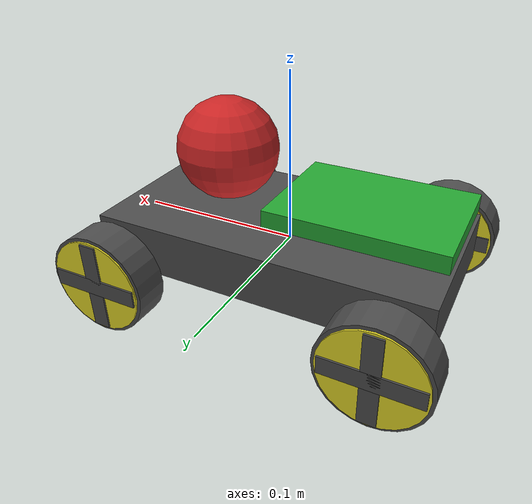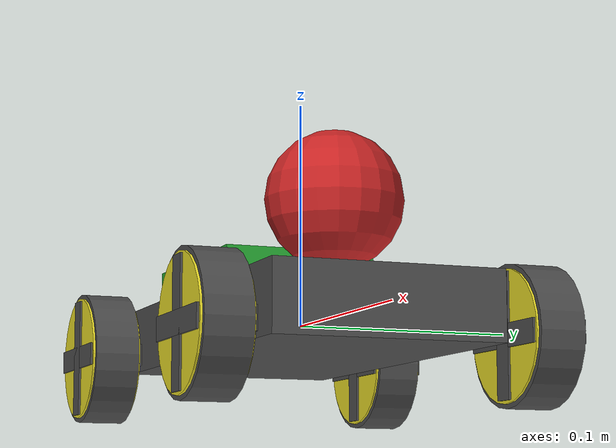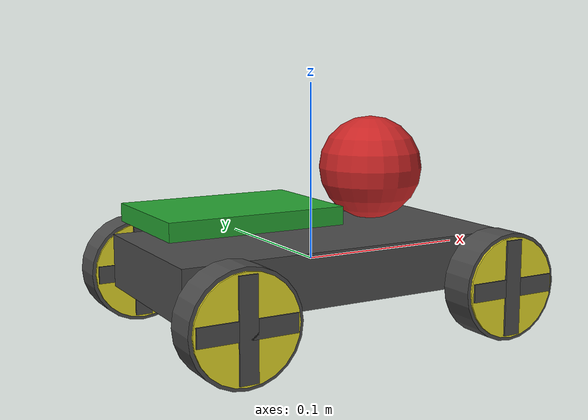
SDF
<?xml version="1.0" ?>
<sdf version="1.7">
  <model name='freenove_4wd'>
    <pose>0 0 0 0 0 0</pose>

    <link name='chassis'>
      <inertial>
        <mass></mass>
        <inertia>
          <ixx>0.01</ixx>
          <iyy>0.01</iyy>
          <izz>0.01</izz>
        </inertia>
      </inertial>

      <visual name='chassis_visual'>
        <pose>0 0 0 0 0 0</pose>
        <geometry>
          <box>
            <size>0.2 0.1 0.03</size>
          </box>
        </geometry>
        <material>
          <script>
            <uri>file://media/materials/scripts/gazebo.material</uri>
            <name>Gazebo/DarkGrey</name>
          </script>
        </material>
      </visual>

      <collision name='chassis_collision'>
        <pose>0 0 0 0 0 0</pose>
        <geometry>
          <box>
            <size>0.2 0.1 0.03</size>
          </box>
        </geometry>
      </collision>

      <visual name='computer_visual'>
        <pose>-0.05 0 0.03 0 0 0</pose>
        <geometry>
          <box>
            <size>0.1 0.07 0.01</size>
          </box>
        </geometry>
        <material>
          <script>
            <uri>file://media/materials/scripts/gazebo.material</uri>
            <name>Gazebo/Green</name>
          </script>
        </material>
      </visual>

      <collision name='computer_collision'>
        <pose>-0.05 0 0.03 0 0 0</pose>
        <geometry>
          <box>
            <size>0.1 0.07 0.01</size>
          </box>
        </geometry>
      </collision>

    </link>
    <link name="front_left">
      <pose>0.08 0.07 -0.01 1.5707 0 0</pose>
      <inertial>
        <mass>0.01</mass>
        <inertia>
          <ixx>0.0001</ixx>
          <iyy>0.0001</iyy>
          <izz>0.0001</izz>
        </inertia>
      </inertial>

      <collision name="collision">
        <geometry>
          <cylinder>
            <radius>0.03</radius>
            <length>0.02</length>
          </cylinder>
        </geometry>
      </collision>

      <visual name="tire">
        <geometry>
          <cylinder>
            <radius>0.03</radius>
            <length>0.02</length>
          </cylinder>
        </geometry>
        <material>
          <script>
            <uri>file://media/materials/scripts/gazebo.material</uri>
            <name>Gazebo/DarkGrey</name>
          </script>
        </material>
      </visual>

      <visual name="wheel">
        <geometry>
          <cylinder>
            <radius>0.028</radius>
            <length>0.022</length>
          </cylinder>
        </geometry>
        <material>
          <script>
            <uri>file://media/materials/scripts/gazebo.material</uri>
            <name>Gazebo/Yellow</name>
          </script>
        </material>
      </visual>

      <visual name="wheel_line">
        <geometry>
          <box>
            <size>0.053 0.01 0.024</size>
          </box>
        </geometry>
        <material>
          <script>
            <uri>file://media/materials/scripts/gazebo.material</uri>
            <name>Gazebo/DarkGrey</name>
          </script>
        </material>
      </visual>

      <visual name="wheel_line2">
        <geometry>
          <box>
            <size>0.01 0.053 0.024</size>
          </box>
        </geometry>
        <material>
          <script>
            <uri>file://media/materials/scripts/gazebo.material</uri>
            <name>Gazebo/DarkGrey</name>
          </script>
        </material>
      </visual>

    </link>

    <joint type="revolute" name="joint_front_left">
      <child>front_left</child>
      <parent>chassis</parent>
      <axis>
        <xyz>0 0 1</xyz>
        <dynamics>
          <friction>0.01</friction>
          <damping>0.01</damping>
        </dynamics>
      </axis>
    </joint>

    <link name="front_right">
      <pose>0.08 -0.07 -0.01 1.5707 0 0</pose>
      <inertial>
        <mass>0.01</mass>
        <inertia>
          <ixx>0.0001</ixx>
          <iyy>0.0001</iyy>
          <izz>0.0001</izz>
        </inertia>
      </inertial>

      <collision name="collision">
        <geometry>
          <cylinder>
            <radius>0.03</radius>
            <length>0.02</length>
          </cylinder>
        </geometry>
      </collision>

      <visual name="tire">
        <geometry>
          <cylinder>
            <radius>0.03</radius>
            <length>0.02</length>
          </cylinder>
        </geometry>
        <material>
          <script>
            <uri>file://media/materials/scripts/gazebo.material</uri>
            <name>Gazebo/DarkGrey</name>
          </script>
        </material>
      </visual>

      <visual name="wheel">
        <geometry>
          <cylinder>
            <radius>0.028</radius>
            <length>0.022</length>
          </cylinder>
        </geometry>
        <material>
          <script>
            <uri>file://media/materials/scripts/gazebo.material</uri>
            <name>Gazebo/Yellow</name>
          </script>
        </material>
      </visual>

      <visual name="wheel_line">
        <geometry>
          <box>
            <size>0.053 0.01 0.024</size>
          </box>
        </geometry>
        <material>
          <script>
            <uri>file://media/materials/scripts/gazebo.material</uri>
            <name>Gazebo/DarkGrey</name>
          </script>
        </material>
      </visual>

      <visual name="wheel_line2">
        <geometry>
          <box>
            <size>0.01 0.053 0.024</size>
          </box>
        </geometry>
        <material>
          <script>
            <uri>file://media/materials/scripts/gazebo.material</uri>
            <name>Gazebo/DarkGrey</name>
          </script>
        </material>
      </visual>

    </link>

    <joint type="revolute" name="joint_front_right">
      <child>front_right</child>
      <parent>chassis</parent>
      <axis>
        <xyz>0 0 1</xyz>
        <dynamics>
          <friction>0.01</friction>
          <damping>0.01</damping>
        </dynamics>
      </axis>
    </joint>

    <link name="rear_left">
      <pose>-0.08 0.07 -0.01 1.5707 0 0</pose>
      <inertial>
        <mass>0.01</mass>
        <inertia>
          <ixx>0.0001</ixx>
          <iyy>0.0001</iyy>
          <izz>0.0001</izz>
        </inertia>
      </inertial>

      <collision name="collision">
        <geometry>
          <cylinder>
            <radius>0.03</radius>
            <length>0.02</length>
          </cylinder>
        </geometry>
      </collision>

      <visual name="tire">
        <geometry>
          <cylinder>
            <radius>0.03</radius>
            <length>0.02</length>
          </cylinder>
        </geometry>
        <material>
          <script>
            <uri>file://media/materials/scripts/gazebo.material</uri>
            <name>Gazebo/DarkGrey</name>
          </script>
        </material>
      </visual>

      <visual name="wheel">
        <geometry>
          <cylinder>
            <radius>0.028</radius>
            <length>0.022</length>
          </cylinder>
        </geometry>
        <material>
          <script>
            <uri>file://media/materials/scripts/gazebo.material</uri>
            <name>Gazebo/Yellow</name>
          </script>
        </material>
      </visual>

      <visual name="wheel_line">
        <geometry>
          <box>
            <size>0.053 0.01 0.024</size>
          </box>
        </geometry>
        <material>
          <script>
            <uri>file://media/materials/scripts/gazebo.material</uri>
            <name>Gazebo/DarkGrey</name>
          </script>
        </material>
      </visual>

      <visual name="wheel_line2">
        <geometry>
          <box>
            <size>0.01 0.053 0.024</size>
          </box>
        </geometry>
        <material>
          <script>
            <uri>file://media/materials/scripts/gazebo.material</uri>
            <name>Gazebo/DarkGrey</name>
          </script>
        </material>
      </visual>

    </link>

    <joint type="revolute" name="joint_rear_left">
      <child>rear_left</child>
      <parent>chassis</parent>
      <axis>
        <xyz>0 0 1</xyz>
        <dynamics>
          <friction>0.01</friction>
          <damping>0.01</damping>
        </dynamics>
      </axis>
    </joint>

    <link name="rear_right">
      <pose>-0.08 -0.07 -0.01 1.5707 0 0</pose>
      <inertial>
        <mass>0.01</mass>
        <inertia>
          <ixx>0.0001</ixx>
          <iyy>0.0001</iyy>
          <izz>0.0001</izz>
        </inertia>
      </inertial>

      <collision name="collision">
        <geometry>
          <cylinder>
            <radius>0.03</radius>
            <length>0.02</length>
          </cylinder>
        </geometry>
      </collision>

      <visual name="tire">
        <geometry>
          <cylinder>
            <radius>0.03</radius>
            <length>0.02</length>
          </cylinder>
        </geometry>
        <material>
          <script>
            <uri>file://media/materials/scripts/gazebo.material</uri>
            <name>Gazebo/DarkGrey</name>
          </script>
        </material>
      </visual>

      <visual name="wheel">
        <geometry>
          <cylinder>
            <radius>0.028</radius>
            <length>0.022</length>
          </cylinder>
        </geometry>
        <material>
          <script>
            <uri>file://media/materials/scripts/gazebo.material</uri>
            <name>Gazebo/Yellow</name>
          </script>
        </material>
      </visual>

      <visual name="wheel_line">
        <geometry>
          <box>
            <size>0.053 0.01 0.024</size>
          </box>
        </geometry>
        <material>
          <script>
            <uri>file://media/materials/scripts/gazebo.material</uri>
            <name>Gazebo/DarkGrey</name>
          </script>
        </material>
      </visual>

      <visual name="wheel_line2">
        <geometry>
          <box>
            <size>0.01 0.053 0.024</size>
          </box>
        </geometry>
        <material>
          <script>
            <uri>file://media/materials/scripts/gazebo.material</uri>
            <name>Gazebo/DarkGrey</name>
          </script>
        </material>
      </visual>

    </link>

    <joint type="revolute" name="joint_rear_right">
      <child>rear_right</child>
      <parent>chassis</parent>
      <axis>
        <xyz>0 0 1</xyz>
        <dynamics>
          <friction>0.01</friction>
          <damping>0.01</damping>
        </dynamics>
      </axis>
    </joint>

    <link name="ball">
      <pose>0.04 0 0.05 0 0 0</pose>
      <inertial>
        <mass>0.001</mass>
        <inertia>
          <ixx>0.0001</ixx>
          <iyy>0.0001</iyy>
          <izz>0.0001</izz>
        </inertia>
      </inertial>
      <visual name="ball_visual">
        <geometry>
          <sphere>
            <radius>0.03</radius>
          </sphere>
        </geometry>
        <material>
          <script>
            <uri>file://media/materials/scripts/gazebo.material</uri>
            <name>Gazebo/Red</name>
          </script>
        </material>
      </visual>
      <collision name="ball_collision">
        <geometry>
          <sphere>
            <radius>0.03</radius>
          </sphere>
        </geometry>
      </collision>
    </link>

    <joint type="fixed" name="ball_attachment">
      <child>ball</child>
      <parent>chassis</parent>
      <axis>
        <xyz>0 0 1</xyz>
        <dynamics>
          <friction>0.01</friction>
          <damping>0.01</damping>
        </dynamics>
      </axis>
    </joint>

  </model>
</sdf>

<!-- vim: set et fenc=utf-8 ff=unix sts=0 sw=2 ts=2 : -->
